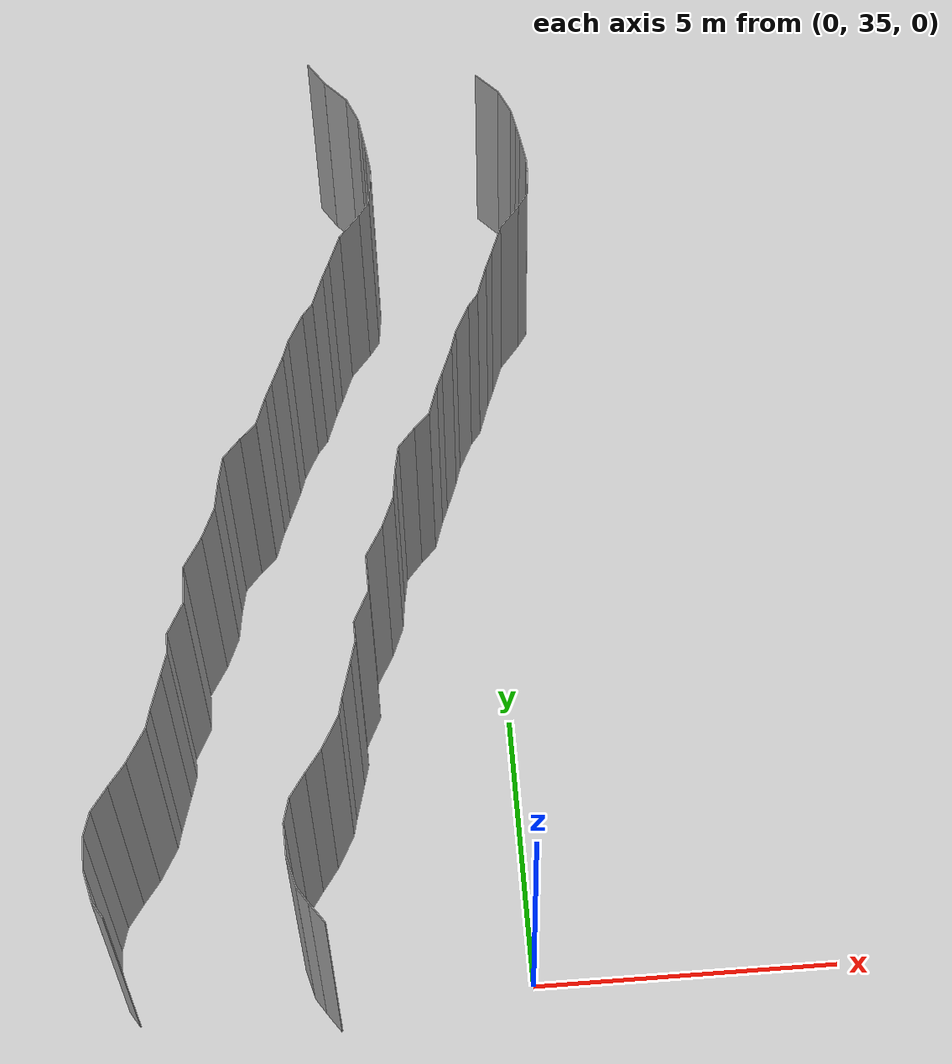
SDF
<sdf version="1.6">
 <world name="default">
  <model name="ground_plane">
   <static>1</static>
   <link name="link">
    <collision name="collision">
     <geometry><plane><normal>0 0 1</normal><size>200 200</size></plane></geometry>
     <surface><friction><ode><mu>100</mu><mu2>50</mu2></ode></friction></surface>
    </collision>
    <visual name="visual">
     <cast_shadows>0</cast_shadows>
     <geometry><plane><normal>0 0 1</normal><size>200 200</size></plane></geometry>
     <material>
      <script><uri>file://media/materials/scripts/gazebo.material</uri><name>Gazebo/Grey</name></script>
     </material>
    </visual>
   </link>
   <pose>0 100 0 0 -0 0</pose>
  </model>
  <model name="wall_149">
   <static>1</static>
   <pose>-3.26137725388 34.6395914228 2 0 0 0.620171144101</pose>
   <link name="link">
    <collision name="collision"><geometry><box><size>0.02 0.410323552296 4</size></box></geometry></collision>
    <visual name="visual">
     <material>
      <script><name>Gazebo/Grey</name><uri>file://media/materials/scripts/gazebo.material</uri></script>
     </material>
     <geometry><box><size>0.02 0.410323552296 4</size></box></geometry>
    </visual>
   </link>
  </model>
  <model name="wall_150">
   <static>1</static>
   <pose>-6.47021817214 34.9441919668 2 0 0 0.577076684955</pose>
   <link name="link">
    <collision name="collision"><geometry><box><size>0.02 0.328482481324 4</size></box></geometry></collision>
    <visual name="visual">
     <material>
      <script><name>Gazebo/Grey</name><uri>file://media/materials/scripts/gazebo.material</uri></script>
     </material>
     <geometry><box><size>0.02 0.328482481324 4</size></box></geometry>
    </visual>
   </link>
  </model>
  <model name="wall_151">
   <static>1</static>
   <pose>-3.47021817214 34.9441919668 2 0 0 0.577076684955</pose>
   <link name="link">
    <collision name="collision"><geometry><box><size>0.02 0.328482481324 4</size></box></geometry></collision>
    <visual name="visual">
     <material>
      <script><name>Gazebo/Grey</name><uri>file://media/materials/scripts/gazebo.material</uri></script>
     </material>
     <geometry><box><size>0.02 0.328482481324 4</size></box></geometry>
    </visual>
   </link>
  </model>
  <model name="wall_152">
   <static>1</static>
   <pose>-6.63035344522 35.338219448 2 0 0 0.268452268416</pose>
   <link name="link">
    <collision name="collision"><geometry><box><size>0.02 0.531814805503 4</size></box></geometry></collision>
    <visual name="visual">
     <material>
      <script><name>Gazebo/Grey</name><uri>file://media/materials/scripts/gazebo.material</uri></script>
     </material>
     <geometry><box><size>0.02 0.531814805503 4</size></box></geometry>
    </visual>
   </link>
  </model>
  <model name="wall_153">
   <static>1</static>
   <pose>-3.63035344522 35.338219448 2 0 0 0.268452268416</pose>
   <link name="link">
    <collision name="collision"><geometry><box><size>0.02 0.531814805503 4</size></box></geometry></collision>
    <visual name="visual">
     <material>
      <script><name>Gazebo/Grey</name><uri>file://media/materials/scripts/gazebo.material</uri></script>
     </material>
     <geometry><box><size>0.02 0.531814805503 4</size></box></geometry>
    </visual>
   </link>
  </model>
  <model name="wall_154">
   <static>1</static>
   <pose>-6.71741020485 35.8713825579 2 0 0 0.0596431522937</pose>
   <link name="link">
    <collision name="collision"><geometry><box><size>0.02 0.554545705378 4</size></box></geometry></collision>
    <visual name="visual">
     <material>
      <script><name>Gazebo/Grey</name><uri>file://media/materials/scripts/gazebo.material</uri></script>
     </material>
     <geometry><box><size>0.02 0.554545705378 4</size></box></geometry>
    </visual>
   </link>
  </model>
  <model name="wall_155">
   <static>1</static>
   <pose>-3.71741020485 35.8713825579 2 0 0 0.0596431522937</pose>
   <link name="link">
    <collision name="collision"><geometry><box><size>0.02 0.554545705378 4</size></box></geometry></collision>
    <visual name="visual">
     <material>
      <script><name>Gazebo/Grey</name><uri>file://media/materials/scripts/gazebo.material</uri></script>
     </material>
     <geometry><box><size>0.02 0.554545705378 4</size></box></geometry>
    </visual>
   </link>
  </model>
  <model name="wall_156">
   <static>1</static>
   <pose>-6.68913219312 36.3563246959 2 0 0 -0.212009125116</pose>
   <link name="link">
    <collision name="collision"><geometry><box><size>0.02 0.425859567588 4</size></box></geometry></collision>
    <visual name="visual">
     <material>
      <script><name>Gazebo/Grey</name><uri>file://media/materials/scripts/gazebo.material</uri></script>
     </material>
     <geometry><box><size>0.02 0.425859567588 4</size></box></geometry>
    </visual>
   </link>
  </model>
  <model name="wall_157">
   <static>1</static>
   <pose>-3.68913219312 36.3563246959 2 0 0 -0.212009125116</pose>
   <link name="link">
    <collision name="collision"><geometry><box><size>0.02 0.425859567588 4</size></box></geometry></collision>
    <visual name="visual">
     <material>
      <script><name>Gazebo/Grey</name><uri>file://media/materials/scripts/gazebo.material</uri></script>
     </material>
     <geometry><box><size>0.02 0.425859567588 4</size></box></geometry>
    </visual>
   </link>
  </model>
  <model name="wall_158">
   <static>1</static>
   <pose>-6.51987297106 36.7694870896 2 0 0 -0.545616740711</pose>
   <link name="link">
    <collision name="collision"><geometry><box><size>0.02 0.479640402566 4</size></box></geometry></collision>
    <visual name="visual">
     <material>
      <script><name>Gazebo/Grey</name><uri>file://media/materials/scripts/gazebo.material</uri></script>
     </material>
     <geometry><box><size>0.02 0.479640402566 4</size></box></geometry>
    </visual>
   </link>
  </model>
  <model name="wall_159">
   <static>1</static>
   <pose>-3.51987297106 36.7694870896 2 0 0 -0.545616740711</pose>
   <link name="link">
    <collision name="collision"><geometry><box><size>0.02 0.479640402566 4</size></box></geometry></collision>
    <visual name="visual">
     <material>
      <script><name>Gazebo/Grey</name><uri>file://media/materials/scripts/gazebo.material</uri></script>
     </material>
     <geometry><box><size>0.02 0.479640402566 4</size></box></geometry>
    </visual>
   </link>
  </model>
  <model name="wall_160">
   <static>1</static>
   <pose>-6.26491447386 37.1739769298 2 0 0 -0.579317580754</pose>
   <link name="link">
    <collision name="collision"><geometry><box><size>0.02 0.476771203994 4</size></box></geometry></collision>
    <visual name="visual">
     <material>
      <script><name>Gazebo/Grey</name><uri>file://media/materials/scripts/gazebo.material</uri></script>
     </material>
     <geometry><box><size>0.02 0.476771203994 4</size></box></geometry>
    </visual>
   </link>
  </model>
  <model name="wall_161">
   <static>1</static>
   <pose>-3.26491447386 37.1739769298 2 0 0 -0.579317580754</pose>
   <link name="link">
    <collision name="collision"><geometry><box><size>0.02 0.476771203994 4</size></box></geometry></collision>
    <visual name="visual">
     <material>
      <script><name>Gazebo/Grey</name><uri>file://media/materials/scripts/gazebo.material</uri></script>
     </material>
     <geometry><box><size>0.02 0.476771203994 4</size></box></geometry>
    </visual>
   </link>
  </model>
  <model name="wall_162">
   <static>1</static>
   <pose>-5.99002334424 37.6712253464 2 0 0 -0.451503080826</pose>
   <link name="link">
    <collision name="collision"><geometry><box><size>0.02 0.661838648091 4</size></box></geometry></collision>
    <visual name="visual">
     <material>
      <script><name>Gazebo/Grey</name><uri>file://media/materials/scripts/gazebo.material</uri></script>
     </material>
     <geometry><box><size>0.02 0.661838648091 4</size></box></geometry>
    </visual>
   </link>
  </model>
  <model name="wall_163">
   <static>1</static>
   <pose>-2.99002334424 37.6712253464 2 0 0 -0.451503080826</pose>
   <link name="link">
    <collision name="collision"><geometry><box><size>0.02 0.661838648091 4</size></box></geometry></collision>
    <visual name="visual">
     <material>
      <script><name>Gazebo/Grey</name><uri>file://media/materials/scripts/gazebo.material</uri></script>
     </material>
     <geometry><box><size>0.02 0.661838648091 4</size></box></geometry>
    </visual>
   </link>
  </model>
  <model name="wall_164">
   <static>1</static>
   <pose>-5.81620156731 38.1239210581 2 0 0 -0.187746485627</pose>
   <link name="link">
    <collision name="collision"><geometry><box><size>0.02 0.31541681931 4</size></box></geometry></collision>
    <visual name="visual">
     <material>
      <script><name>Gazebo/Grey</name><uri>file://media/materials/scripts/gazebo.material</uri></script>
     </material>
     <geometry><box><size>0.02 0.31541681931 4</size></box></geometry>
    </visual>
   </link>
  </model>
  <model name="wall_165">
   <static>1</static>
   <pose>-2.81620156731 38.1239210581 2 0 0 -0.187746485627</pose>
   <link name="link">
    <collision name="collision"><geometry><box><size>0.02 0.31541681931 4</size></box></geometry></collision>
    <visual name="visual">
     <material>
      <script><name>Gazebo/Grey</name><uri>file://media/materials/scripts/gazebo.material</uri></script>
     </material>
     <geometry><box><size>0.02 0.31541681931 4</size></box></geometry>
    </visual>
   </link>
  </model>
  <model name="wall_166">
   <static>1</static>
   <pose>-5.70923226421 38.6080770975 2 0 0 -0.231293434691</pose>
   <link name="link">
    <collision name="collision"><geometry><box><size>0.02 0.676451395479 4</size></box></geometry></collision>
    <visual name="visual">
     <material>
      <script><name>Gazebo/Grey</name><uri>file://media/materials/scripts/gazebo.material</uri></script>
     </material>
     <geometry><box><size>0.02 0.676451395479 4</size></box></geometry>
    </visual>
   </link>
  </model>
  <model name="wall_167">
   <static>1</static>
   <pose>-2.70923226421 38.6080770975 2 0 0 -0.231293434691</pose>
   <link name="link">
    <collision name="collision"><geometry><box><size>0.02 0.676451395479 4</size></box></geometry></collision>
    <visual name="visual">
     <material>
      <script><name>Gazebo/Grey</name><uri>file://media/materials/scripts/gazebo.material</uri></script>
     </material>
     <geometry><box><size>0.02 0.676451395479 4</size></box></geometry>
    </visual>
   </link>
  </model>
  <model name="wall_168">
   <static>1</static>
   <pose>-5.58600661176 39.1343886069 2 0 0 -0.227805497636</pose>
   <link name="link">
    <collision name="collision"><geometry><box><size>0.02 0.404639162764 4</size></box></geometry></collision>
    <visual name="visual">
     <material>
      <script><name>Gazebo/Grey</name><uri>file://media/materials/scripts/gazebo.material</uri></script>
     </material>
     <geometry><box><size>0.02 0.404639162764 4</size></box></geometry>
    </visual>
   </link>
  </model>
  <model name="wall_169">
   <static>1</static>
   <pose>-2.58600661176 39.1343886069 2 0 0 -0.227805497636</pose>
   <link name="link">
    <collision name="collision"><geometry><box><size>0.02 0.404639162764 4</size></box></geometry></collision>
    <visual name="visual">
     <material>
      <script><name>Gazebo/Grey</name><uri>file://media/materials/scripts/gazebo.material</uri></script>
     </material>
     <geometry><box><size>0.02 0.404639162764 4</size></box></geometry>
    </visual>
   </link>
  </model>
  <model name="wall_170">
   <static>1</static>
   <pose>-5.5465591146 39.5142181184 2 0 0 0.0341582815771</pose>
   <link name="link">
    <collision name="collision"><geometry><box><size>0.02 0.365687296159 4</size></box></geometry></collision>
    <visual name="visual">
     <material>
      <script><name>Gazebo/Grey</name><uri>file://media/materials/scripts/gazebo.material</uri></script>
     </material>
     <geometry><box><size>0.02 0.365687296159 4</size></box></geometry>
    </visual>
   </link>
  </model>
  <model name="wall_171">
   <static>1</static>
   <pose>-2.5465591146 39.5142181184 2 0 0 0.0341582815771</pose>
   <link name="link">
    <collision name="collision"><geometry><box><size>0.02 0.365687296159 4</size></box></geometry></collision>
    <visual name="visual">
     <material>
      <script><name>Gazebo/Grey</name><uri>file://media/materials/scripts/gazebo.material</uri></script>
     </material>
     <geometry><box><size>0.02 0.365687296159 4</size></box></geometry>
    </visual>
   </link>
  </model>
  <model name="wall_172">
   <static>1</static>
   <pose>-5.42230637374 39.993108908 2 0 0 -0.415042772256</pose>
   <link name="link">
    <collision name="collision"><geometry><box><size>0.02 0.647260628679 4</size></box></geometry></collision>
    <visual name="visual">
     <material>
      <script><name>Gazebo/Grey</name><uri>file://media/materials/scripts/gazebo.material</uri></script>
     </material>
     <geometry><box><size>0.02 0.647260628679 4</size></box></geometry>
    </visual>
   </link>
  </model>
  <model name="wall_173">
   <static>1</static>
   <pose>-2.42230637374 39.993108908 2 0 0 -0.415042772256</pose>
   <link name="link">
    <collision name="collision"><geometry><box><size>0.02 0.647260628679 4</size></box></geometry></collision>
    <visual name="visual">
     <material>
      <script><name>Gazebo/Grey</name><uri>file://media/materials/scripts/gazebo.material</uri></script>
     </material>
     <geometry><box><size>0.02 0.647260628679 4</size></box></geometry>
    </visual>
   </link>
  </model>
  <model name="wall_174">
   <static>1</static>
   <pose>-5.30125368106 40.6375280884 2 0 0 0.0271119235204</pose>
   <link name="link">
    <collision name="collision"><geometry><box><size>0.02 0.696786831888 4</size></box></geometry></collision>
    <visual name="visual">
     <material>
      <script><name>Gazebo/Grey</name><uri>file://media/materials/scripts/gazebo.material</uri></script>
     </material>
     <geometry><box><size>0.02 0.696786831888 4</size></box></geometry>
    </visual>
   </link>
  </model>
  <model name="wall_175">
   <static>1</static>
   <pose>-2.30125368106 40.6375280884 2 0 0 0.0271119235204</pose>
   <link name="link">
    <collision name="collision"><geometry><box><size>0.02 0.696786831888 4</size></box></geometry></collision>
    <visual name="visual">
     <material>
      <script><name>Gazebo/Grey</name><uri>file://media/materials/scripts/gazebo.material</uri></script>
     </material>
     <geometry><box><size>0.02 0.696786831888 4</size></box></geometry>
    </visual>
   </link>
  </model>
  <model name="wall_176">
   <static>1</static>
   <pose>-5.16384598922 41.2746168357 2 0 0 -0.470384484829</pose>
   <link name="link">
    <collision name="collision"><geometry><box><size>0.02 0.648026208962 4</size></box></geometry></collision>
    <visual name="visual">
     <material>
      <script><name>Gazebo/Grey</name><uri>file://media/materials/scripts/gazebo.material</uri></script>
     </material>
     <geometry><box><size>0.02 0.648026208962 4</size></box></geometry>
    </visual>
   </link>
  </model>
  <model name="wall_177">
   <static>1</static>
   <pose>-2.16384598922 41.2746168357 2 0 0 -0.470384484829</pose>
   <link name="link">
    <collision name="collision"><geometry><box><size>0.02 0.648026208962 4</size></box></geometry></collision>
    <visual name="visual">
     <material>
      <script><name>Gazebo/Grey</name><uri>file://media/materials/scripts/gazebo.material</uri></script>
     </material>
     <geometry><box><size>0.02 0.648026208962 4</size></box></geometry>
    </visual>
   </link>
  </model>
  <model name="wall_178">
   <static>1</static>
   <pose>-4.91062837559 41.8608577352 2 0 0 -0.343456003543</pose>
   <link name="link">
    <collision name="collision"><geometry><box><size>0.02 0.631730322047 4</size></box></geometry></collision>
    <visual name="visual">
     <material>
      <script><name>Gazebo/Grey</name><uri>file://media/materials/scripts/gazebo.material</uri></script>
     </material>
     <geometry><box><size>0.02 0.631730322047 4</size></box></geometry>
    </visual>
   </link>
  </model>
  <model name="wall_179">
   <static>1</static>
   <pose>-1.91062837559 41.8608577352 2 0 0 -0.343456003543</pose>
   <link name="link">
    <collision name="collision"><geometry><box><size>0.02 0.631730322047 4</size></box></geometry></collision>
    <visual name="visual">
     <material>
      <script><name>Gazebo/Grey</name><uri>file://media/materials/scripts/gazebo.material</uri></script>
     </material>
     <geometry><box><size>0.02 0.631730322047 4</size></box></geometry>
    </visual>
   </link>
  </model>
  <model name="wall_180">
   <static>1</static>
   <pose>-4.77532688392 42.4442702006 2 0 0 -0.10083358236</pose>
   <link name="link">
    <collision name="collision"><geometry><box><size>0.02 0.574910065399 4</size></box></geometry></collision>
    <visual name="visual">
     <material>
      <script><name>Gazebo/Grey</name><uri>file://media/materials/scripts/gazebo.material</uri></script>
     </material>
     <geometry><box><size>0.02 0.574910065399 4</size></box></geometry>
    </visual>
   </link>
  </model>
  <model name="wall_181">
   <static>1</static>
   <pose>-1.77532688392 42.4442702006 2 0 0 -0.10083358236</pose>
   <link name="link">
    <collision name="collision"><geometry><box><size>0.02 0.574910065399 4</size></box></geometry></collision>
    <visual name="visual">
     <material>
      <script><name>Gazebo/Grey</name><uri>file://media/materials/scripts/gazebo.material</uri></script>
     </material>
     <geometry><box><size>0.02 0.574910065399 4</size></box></geometry>
    </visual>
   </link>
  </model>
  <model name="wall_182">
   <static>1</static>
   <pose>-4.70732225489 42.9802098434 2 0 0 -0.155054308263</pose>
   <link name="link">
    <collision name="collision"><geometry><box><size>0.02 0.505959339065 4</size></box></geometry></collision>
    <visual name="visual">
     <material>
      <script><name>Gazebo/Grey</name><uri>file://media/materials/scripts/gazebo.material</uri></script>
     </material>
     <geometry><box><size>0.02 0.505959339065 4</size></box></geometry>
    </visual>
   </link>
  </model>
  <model name="wall_183">
   <static>1</static>
   <pose>-1.70732225489 42.9802098434 2 0 0 -0.155054308263</pose>
   <link name="link">
    <collision name="collision"><geometry><box><size>0.02 0.505959339065 4</size></box></geometry></collision>
    <visual name="visual">
     <material>
      <script><name>Gazebo/Grey</name><uri>file://media/materials/scripts/gazebo.material</uri></script>
     </material>
     <geometry><box><size>0.02 0.505959339065 4</size></box></geometry>
    </visual>
   </link>
  </model>
  <model name="wall_184">
   <static>1</static>
   <pose>-4.52289108479 43.4241231355 2 0 0 -0.643125296045</pose>
   <link name="link">
    <collision name="collision"><geometry><box><size>0.02 0.484784850265 4</size></box></geometry></collision>
    <visual name="visual">
     <material>
      <script><name>Gazebo/Grey</name><uri>file://media/materials/scripts/gazebo.material</uri></script>
     </material>
     <geometry><box><size>0.02 0.484784850265 4</size></box></geometry>
    </visual>
   </link>
  </model>
  <model name="wall_185">
   <static>1</static>
   <pose>-1.52289108479 43.4241231355 2 0 0 -0.643125296045</pose>
   <link name="link">
    <collision name="collision"><geometry><box><size>0.02 0.484784850265 4</size></box></geometry></collision>
    <visual name="visual">
     <material>
      <script><name>Gazebo/Grey</name><uri>file://media/materials/scripts/gazebo.material</uri></script>
     </material>
     <geometry><box><size>0.02 0.484784850265 4</size></box></geometry>
    </visual>
   </link>
  </model>
  <model name="wall_186">
   <static>1</static>
   <pose>-4.24005698524 43.7746924127 2 0 0 -0.720440476467</pose>
   <link name="link">
    <collision name="collision"><geometry><box><size>0.02 0.416759878302 4</size></box></geometry></collision>
    <visual name="visual">
     <material>
      <script><name>Gazebo/Grey</name><uri>file://media/materials/scripts/gazebo.material</uri></script>
     </material>
     <geometry><box><size>0.02 0.416759878302 4</size></box></geometry>
    </visual>
   </link>
  </model>
  <model name="wall_187">
   <static>1</static>
   <pose>-1.24005698524 43.7746924127 2 0 0 -0.720440476467</pose>
   <link name="link">
    <collision name="collision"><geometry><box><size>0.02 0.416759878302 4</size></box></geometry></collision>
    <visual name="visual">
     <material>
      <script><name>Gazebo/Grey</name><uri>file://media/materials/scripts/gazebo.material</uri></script>
     </material>
     <geometry><box><size>0.02 0.416759878302 4</size></box></geometry>
    </visual>
   </link>
  </model>
  <model name="wall_188">
   <static>1</static>
   <pose>-4.0204744063 44.2188453828 2 0 0 -0.278149362104</pose>
   <link name="link">
    <collision name="collision"><geometry><box><size>0.02 0.598092085411 4</size></box></geometry></collision>
    <visual name="visual">
     <material>
      <script><name>Gazebo/Grey</name><uri>file://media/materials/scripts/gazebo.material</uri></script>
     </material>
     <geometry><box><size>0.02 0.598092085411 4</size></box></geometry>
    </visual>
   </link>
  </model>
  <model name="wall_189">
   <static>1</static>
   <pose>-1.0204744063 44.2188453828 2 0 0 -0.278149362104</pose>
   <link name="link">
    <collision name="collision"><geometry><box><size>0.02 0.598092085411 4</size></box></geometry></collision>
    <visual name="visual">
     <material>
      <script><name>Gazebo/Grey</name><uri>file://media/materials/scripts/gazebo.material</uri></script>
     </material>
     <geometry><box><size>0.02 0.598092085411 4</size></box></geometry>
    </visual>
   </link>
  </model>
  <model name="wall_190">
   <static>1</static>
   <pose>-3.88359978402 44.6605022531 2 0 0 -0.341447430136</pose>
   <link name="link">
    <collision name="collision"><geometry><box><size>0.02 0.32709188322 4</size></box></geometry></collision>
    <visual name="visual">
     <material>
      <script><name>Gazebo/Grey</name><uri>file://media/materials/scripts/gazebo.material</uri></script>
     </material>
     <geometry><box><size>0.02 0.32709188322 4</size></box></geometry>
    </visual>
   </link>
  </model>
  <model name="wall_191">
   <static>1</static>
   <pose>-0.883599784022 44.6605022531 2 0 0 -0.341447430136</pose>
   <link name="link">
    <collision name="collision"><geometry><box><size>0.02 0.32709188322 4</size></box></geometry></collision>
    <visual name="visual">
     <material>
      <script><name>Gazebo/Grey</name><uri>file://media/materials/scripts/gazebo.material</uri></script>
     </material>
     <geometry><box><size>0.02 0.32709188322 4</size></box></geometry>
    </visual>
   </link>
  </model>
  <model name="wall_192">
   <static>1</static>
   <pose>-3.72401487203 45.1182942073 2 0 0 -0.332358318672</pose>
   <link name="link">
    <collision name="collision"><geometry><box><size>0.02 0.642537237676 4</size></box></geometry></collision>
    <visual name="visual">
     <material>
      <script><name>Gazebo/Grey</name><uri>file://media/materials/scripts/gazebo.material</uri></script>
     </material>
     <geometry><box><size>0.02 0.642537237676 4</size></box></geometry>
    </visual>
   </link>
  </model>
  <model name="wall_193">
   <static>1</static>
   <pose>-0.724014872027 45.1182942073 2 0 0 -0.332358318672</pose>
   <link name="link">
    <collision name="collision"><geometry><box><size>0.02 0.642537237676 4</size></box></geometry></collision>
    <visual name="visual">
     <material>
      <script><name>Gazebo/Grey</name><uri>file://media/materials/scripts/gazebo.material</uri></script>
     </material>
     <geometry><box><size>0.02 0.642537237676 4</size></box></geometry>
    </visual>
   </link>
  </model>
  <model name="wall_194">
   <static>1</static>
   <pose>-3.57015533988 45.6041243832 2 0 0 -0.262993416338</pose>
   <link name="link">
    <collision name="collision"><geometry><box><size>0.02 0.377257206267 4</size></box></geometry></collision>
    <visual name="visual">
     <material>
      <script><name>Gazebo/Grey</name><uri>file://media/materials/scripts/gazebo.material</uri></script>
     </material>
     <geometry><box><size>0.02 0.377257206267 4</size></box></geometry>
    </visual>
   </link>
  </model>
  <model name="wall_195">
   <static>1</static>
   <pose>-0.570155339884 45.6041243832 2 0 0 -0.262993416338</pose>
   <link name="link">
    <collision name="collision"><geometry><box><size>0.02 0.377257206267 4</size></box></geometry></collision>
    <visual name="visual">
     <material>
      <script><name>Gazebo/Grey</name><uri>file://media/materials/scripts/gazebo.material</uri></script>
     </material>
     <geometry><box><size>0.02 0.377257206267 4</size></box></geometry>
    </visual>
   </link>
  </model>
  <model name="wall_196">
   <static>1</static>
   <pose>-3.38805000863 46.085904951 2 0 0 -0.417931122757</pose>
   <link name="link">
    <collision name="collision"><geometry><box><size>0.02 0.655712270227 4</size></box></geometry></collision>
    <visual name="visual">
     <material>
      <script><name>Gazebo/Grey</name><uri>file://media/materials/scripts/gazebo.material</uri></script>
     </material>
     <geometry><box><size>0.02 0.655712270227 4</size></box></geometry>
    </visual>
   </link>
  </model>
  <model name="wall_197">
   <static>1</static>
   <pose>-0.388050008627 46.085904951 2 0 0 -0.417931122757</pose>
   <link name="link">
    <collision name="collision"><geometry><box><size>0.02 0.655712270227 4</size></box></geometry></collision>
    <visual name="visual">
     <material>
      <script><name>Gazebo/Grey</name><uri>file://media/materials/scripts/gazebo.material</uri></script>
     </material>
     <geometry><box><size>0.02 0.655712270227 4</size></box></geometry>
    </visual>
   </link>
  </model>
  <model name="wall_198">
   <static>1</static>
   <pose>-3.16210309845 46.5226103579 2 0 0 -0.595547334489</pose>
   <link name="link">
    <collision name="collision"><geometry><box><size>0.02 0.331144646641 4</size></box></geometry></collision>
    <visual name="visual">
     <material>
      <script><name>Gazebo/Grey</name><uri>file://media/materials/scripts/gazebo.material</uri></script>
     </material>
     <geometry><box><size>0.02 0.331144646641 4</size></box></geometry>
    </visual>
   </link>
  </model>
  <model name="wall_199">
   <static>1</static>
   <pose>-0.16210309845 46.5226103579 2 0 0 -0.595547334489</pose>
   <link name="link">
    <collision name="collision"><geometry><box><size>0.02 0.331144646641 4</size></box></geometry></collision>
    <visual name="visual">
     <material>
      <script><name>Gazebo/Grey</name><uri>file://media/materials/scripts/gazebo.material</uri></script>
     </material>
     <geometry><box><size>0.02 0.331144646641 4</size></box></geometry>
    </visual>
   </link>
  </model>
  <model name="wall_200">
   <static>1</static>
   <pose>-2.96957116347 46.9839953378 2 0 0 -0.298110786471</pose>
   <link name="link">
    <collision name="collision"><geometry><box><size>0.02 0.67856401499 4</size></box></geometry></collision>
    <visual name="visual">
     <material>
      <script><name>Gazebo/Grey</name><uri>file://media/materials/scripts/gazebo.material</uri></script>
     </material>
     <geometry><box><size>0.02 0.67856401499 4</size></box></geometry>
    </visual>
   </link>
  </model>
  <model name="wall_201">
   <static>1</static>
   <pose>0.0304288365317 46.9839953378 2 0 0 -0.298110786471</pose>
   <link name="link">
    <collision name="collision"><geometry><box><size>0.02 0.67856401499 4</size></box></geometry></collision>
    <visual name="visual">
     <material>
      <script><name>Gazebo/Grey</name><uri>file://media/materials/scripts/gazebo.material</uri></script>
     </material>
     <geometry><box><size>0.02 0.67856401499 4</size></box></geometry>
    </visual>
   </link>
  </model>
  <model name="wall_202">
   <static>1</static>
   <pose>-2.80629739308 47.4843147629 2 0 0 -0.34686701295</pose>
   <link name="link">
    <collision name="collision"><geometry><box><size>0.02 0.374296397689 4</size></box></geometry></collision>
    <visual name="visual">
     <material>
      <script><name>Gazebo/Grey</name><uri>file://media/materials/scripts/gazebo.material</uri></script>
     </material>
     <geometry><box><size>0.02 0.374296397689 4</size></box></geometry>
    </visual>
   </link>
  </model>
  <model name="wall_203">
   <static>1</static>
   <pose>0.193702606922 47.4843147629 2 0 0 -0.34686701295</pose>
   <link name="link">
    <collision name="collision"><geometry><box><size>0.02 0.374296397689 4</size></box></geometry></collision>
    <visual name="visual">
     <material>
      <script><name>Gazebo/Grey</name><uri>file://media/materials/scripts/gazebo.material</uri></script>
     </material>
     <geometry><box><size>0.02 0.374296397689 4</size></box></geometry>
    </visual>
   </link>
  </model>
  <model name="wall_204">
   <static>1</static>
   <pose>-2.63330381585 47.9848545231 2 0 0 -0.325054603298</pose>
   <link name="link">
    <collision name="collision"><geometry><box><size>0.02 0.684943560532 4</size></box></geometry></collision>
    <visual name="visual">
     <material>
      <script><name>Gazebo/Grey</name><uri>file://media/materials/scripts/gazebo.material</uri></script>
     </material>
     <geometry><box><size>0.02 0.684943560532 4</size></box></geometry>
    </visual>
   </link>
  </model>
  <model name="wall_205">
   <static>1</static>
   <pose>0.366696184154 47.9848545231 2 0 0 -0.325054603298</pose>
   <link name="link">
    <collision name="collision"><geometry><box><size>0.02 0.684943560532 4</size></box></geometry></collision>
    <visual name="visual">
     <material>
      <script><name>Gazebo/Grey</name><uri>file://media/materials/scripts/gazebo.material</uri></script>
     </material>
     <geometry><box><size>0.02 0.684943560532 4</size></box></geometry>
    </visual>
   </link>
  </model>
  <model name="wall_206">
   <static>1</static>
   <pose>-2.3365187877 48.5715175739 2 0 0 -0.620705648471</pose>
   <link name="link">
    <collision name="collision"><geometry><box><size>0.02 0.644463731275 4</size></box></geometry></collision>
    <visual name="visual">
     <material>
      <script><name>Gazebo/Grey</name><uri>file://media/materials/scripts/gazebo.material</uri></script>
     </material>
     <geometry><box><size>0.02 0.644463731275 4</size></box></geometry>
    </visual>
   </link>
  </model>
  <model name="wall_207">
   <static>1</static>
   <pose>0.663481212298 48.5715175739 2 0 0 -0.620705648471</pose>
   <link name="link">
    <collision name="collision"><geometry><box><size>0.02 0.644463731275 4</size></box></geometry></collision>
    <visual name="visual">
     <material>
      <script><name>Gazebo/Grey</name><uri>file://media/materials/scripts/gazebo.material</uri></script>
     </material>
     <geometry><box><size>0.02 0.644463731275 4</size></box></geometry>
    </visual>
   </link>
  </model>
  <model name="wall_208">
   <static>1</static>
   <pose>-2.0509509393 48.9958978198 2 0 0 -0.544045461845</pose>
   <link name="link">
    <collision name="collision"><geometry><box><size>0.02 0.379267718885 4</size></box></geometry></collision>
    <visual name="visual">
     <material>
      <script><name>Gazebo/Grey</name><uri>file://media/materials/scripts/gazebo.material</uri></script>
     </material>
     <geometry><box><size>0.02 0.379267718885 4</size></box></geometry>
    </visual>
   </link>
  </model>
  <model name="wall_209">
   <static>1</static>
   <pose>0.949049060702 48.9958978198 2 0 0 -0.544045461845</pose>
   <link name="link">
    <collision name="collision"><geometry><box><size>0.02 0.379267718885 4</size></box></geometry></collision>
    <visual name="visual">
     <material>
      <script><name>Gazebo/Grey</name><uri>file://media/materials/scripts/gazebo.material</uri></script>
     </material>
     <geometry><box><size>0.02 0.379267718885 4</size></box></geometry>
    </visual>
   </link>
  </model>
  <model name="wall_210">
   <static>1</static>
   <pose>-1.92205930197 49.4707594144 2 0 0 -0.0980092978862</pose>
   <link name="link">
    <collision name="collision"><geometry><box><size>0.02 0.628228390138 4</size></box></geometry></collision>
    <visual name="visual">
     <material>
      <script><name>Gazebo/Grey</name><uri>file://media/materials/scripts/gazebo.material</uri></script>
     </material>
     <geometry><box><size>0.02 0.628228390138 4</size></box></geometry>
    </visual>
   </link>
  </model>
  <model name="wall_211">
   <static>1</static>
   <pose>1.07794069803 49.4707594144 2 0 0 -0.0980092978862</pose>
   <link name="link">
    <collision name="collision"><geometry><box><size>0.02 0.628228390138 4</size></box></geometry></collision>
    <visual name="visual">
     <material>
      <script><name>Gazebo/Grey</name><uri>file://media/materials/scripts/gazebo.material</uri></script>
     </material>
     <geometry><box><size>0.02 0.628228390138 4</size></box></geometry>
    </visual>
   </link>
  </model>
  <model name="wall_212">
   <static>1</static>
   <pose>-1.88885302683 49.9352385821 2 0 0 -0.0162584470009</pose>
   <link name="link">
    <collision name="collision"><geometry><box><size>0.02 0.303785005901 4</size></box></geometry></collision>
    <visual name="visual">
     <material>
      <script><name>Gazebo/Grey</name><uri>file://media/materials/scripts/gazebo.material</uri></script>
     </material>
     <geometry><box><size>0.02 0.303785005901 4</size></box></geometry>
    </visual>
   </link>
  </model>
  <model name="wall_213">
   <static>1</static>
   <pose>1.11114697317 49.9352385821 2 0 0 -0.0162584470009</pose>
   <link name="link">
    <collision name="collision"><geometry><box><size>0.02 0.303785005901 4</size></box></geometry></collision>
    <visual name="visual">
     <material>
      <script><name>Gazebo/Grey</name><uri>file://media/materials/scripts/gazebo.material</uri></script>
     </material>
     <geometry><box><size>0.02 0.303785005901 4</size></box></geometry>
    </visual>
   </link>
  </model>
  <model name="wall_214">
   <static>1</static>
   <pose>-1.92210732696 50.3869858327 2 0 0 0.118570004162</pose>
   <link name="link">
    <collision name="collision"><geometry><box><size>0.02 0.603990377169 4</size></box></geometry></collision>
    <visual name="visual">
     <material>
      <script><name>Gazebo/Grey</name><uri>file://media/materials/scripts/gazebo.material</uri></script>
     </material>
     <geometry><box><size>0.02 0.603990377169 4</size></box></geometry>
    </visual>
   </link>
  </model>
  <model name="wall_215">
   <static>1</static>
   <pose>1.07789267304 50.3869858327 2 0 0 0.118570004162</pose>
   <link name="link">
    <collision name="collision"><geometry><box><size>0.02 0.603990377169 4</size></box></geometry></collision>
    <visual name="visual">
     <material>
      <script><name>Gazebo/Grey</name><uri>file://media/materials/scripts/gazebo.material</uri></script>
     </material>
     <geometry><box><size>0.02 0.603990377169 4</size></box></geometry>
    </visual>
   </link>
  </model>
  <model name="wall_216">
   <static>1</static>
   <pose>-1.9831382389 50.8703691599 2 0 0 0.137043000464</pose>
   <link name="link">
    <collision name="collision"><geometry><box><size>0.02 0.370490620017 4</size></box></geometry></collision>
    <visual name="visual">
     <material>
      <script><name>Gazebo/Grey</name><uri>file://media/materials/scripts/gazebo.material</uri></script>
     </material>
     <geometry><box><size>0.02 0.370490620017 4</size></box></geometry>
    </visual>
   </link>
  </model>
  <model name="wall_217">
   <static>1</static>
   <pose>1.0168617611 50.8703691599 2 0 0 0.137043000464</pose>
   <link name="link">
    <collision name="collision"><geometry><box><size>0.02 0.370490620017 4</size></box></geometry></collision>
    <visual name="visual">
     <material>
      <script><name>Gazebo/Grey</name><uri>file://media/materials/scripts/gazebo.material</uri></script>
     </material>
     <geometry><box><size>0.02 0.370490620017 4</size></box></geometry>
    </visual>
   </link>
  </model>
  <model name="wall_218">
   <static>1</static>
   <pose>-2.03770487952 51.2562165015 2 0 0 0.143610737937</pose>
   <link name="link">
    <collision name="collision"><geometry><box><size>0.02 0.408886882438 4</size></box></geometry></collision>
    <visual name="visual">
     <material>
      <script><name>Gazebo/Grey</name><uri>file://media/materials/scripts/gazebo.material</uri></script>
     </material>
     <geometry><box><size>0.02 0.408886882438 4</size></box></geometry>
    </visual>
   </link>
  </model>
  <model name="wall_219">
   <static>1</static>
   <pose>0.962295120483 51.2562165015 2 0 0 0.143610737937</pose>
   <link name="link">
    <collision name="collision"><geometry><box><size>0.02 0.408886882438 4</size></box></geometry></collision>
    <visual name="visual">
     <material>
      <script><name>Gazebo/Grey</name><uri>file://media/materials/scripts/gazebo.material</uri></script>
     </material>
     <geometry><box><size>0.02 0.408886882438 4</size></box></geometry>
    </visual>
   </link>
  </model>
  <model name="wall_220">
   <static>1</static>
   <pose>-2.17253696369 51.7551916632 2 0 0 0.341920525891</pose>
   <link name="link">
    <collision name="collision"><geometry><box><size>0.02 0.629725937441 4</size></box></geometry></collision>
    <visual name="visual">
     <material>
      <script><name>Gazebo/Grey</name><uri>file://media/materials/scripts/gazebo.material</uri></script>
     </material>
     <geometry><box><size>0.02 0.629725937441 4</size></box></geometry>
    </visual>
   </link>
  </model>
  <model name="wall_221">
   <static>1</static>
   <pose>0.827463036314 51.7551916632 2 0 0 0.341920525891</pose>
   <link name="link">
    <collision name="collision"><geometry><box><size>0.02 0.629725937441 4</size></box></geometry></collision>
    <visual name="visual">
     <material>
      <script><name>Gazebo/Grey</name><uri>file://media/materials/scripts/gazebo.material</uri></script>
     </material>
     <geometry><box><size>0.02 0.629725937441 4</size></box></geometry>
    </visual>
   </link>
  </model>
  <model name="wall_222">
   <static>1</static>
   <pose>-2.48438945133 52.3091510834 2 0 0 0.675738660698</pose>
   <link name="link">
    <collision name="collision"><geometry><box><size>0.02 0.659595499807 4</size></box></geometry></collision>
    <visual name="visual">
     <material>
      <script><name>Gazebo/Grey</name><uri>file://media/materials/scripts/gazebo.material</uri></script>
     </material>
     <geometry><box><size>0.02 0.659595499807 4</size></box></geometry>
    </visual>
   </link>
  </model>
  <model name="wall_223">
   <static>1</static>
   <pose>0.51561054867 52.3091510834 2 0 0 0.675738660698</pose>
   <link name="link">
    <collision name="collision"><geometry><box><size>0.02 0.659595499807 4</size></box></geometry></collision>
    <visual name="visual">
     <material>
      <script><name>Gazebo/Grey</name><uri>file://media/materials/scripts/gazebo.material</uri></script>
     </material>
     <geometry><box><size>0.02 0.659595499807 4</size></box></geometry>
    </visual>
   </link>
  </model>
  <model name="wall_224">
   <static>1</static>
   <pose>-2.85005513345 52.8491950254 2 0 0 0.513343728631</pose>
   <link name="link">
    <collision name="collision"><geometry><box><size>0.02 0.649106825062 4</size></box></geometry></collision>
    <visual name="visual">
     <material>
      <script><name>Gazebo/Grey</name><uri>file://media/materials/scripts/gazebo.material</uri></script>
     </material>
     <geometry><box><size>0.02 0.649106825062 4</size></box></geometry>
    </visual>
   </link>
  </model>
 </world>
</sdf>
